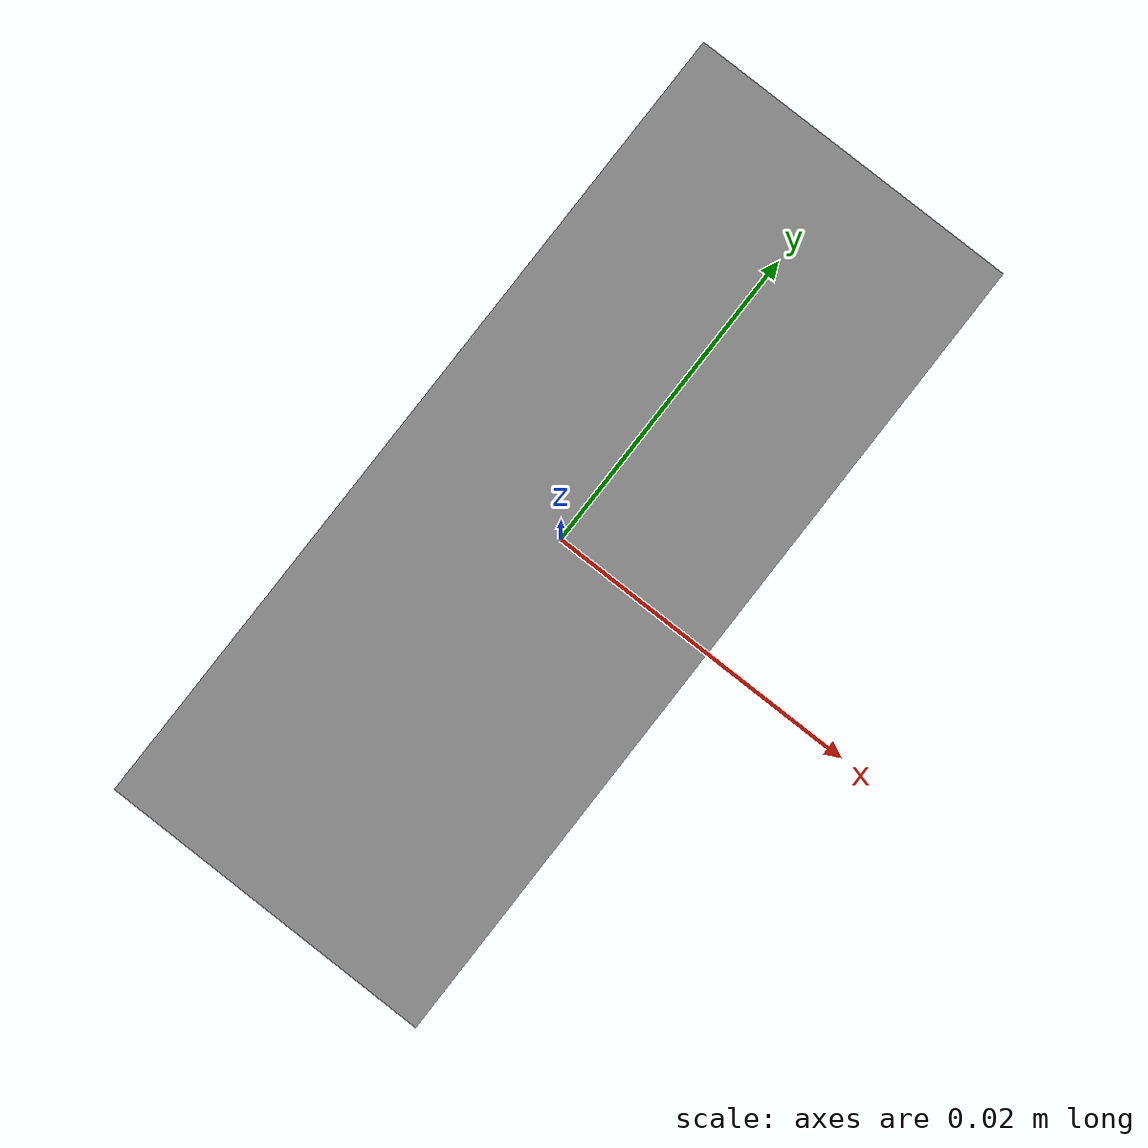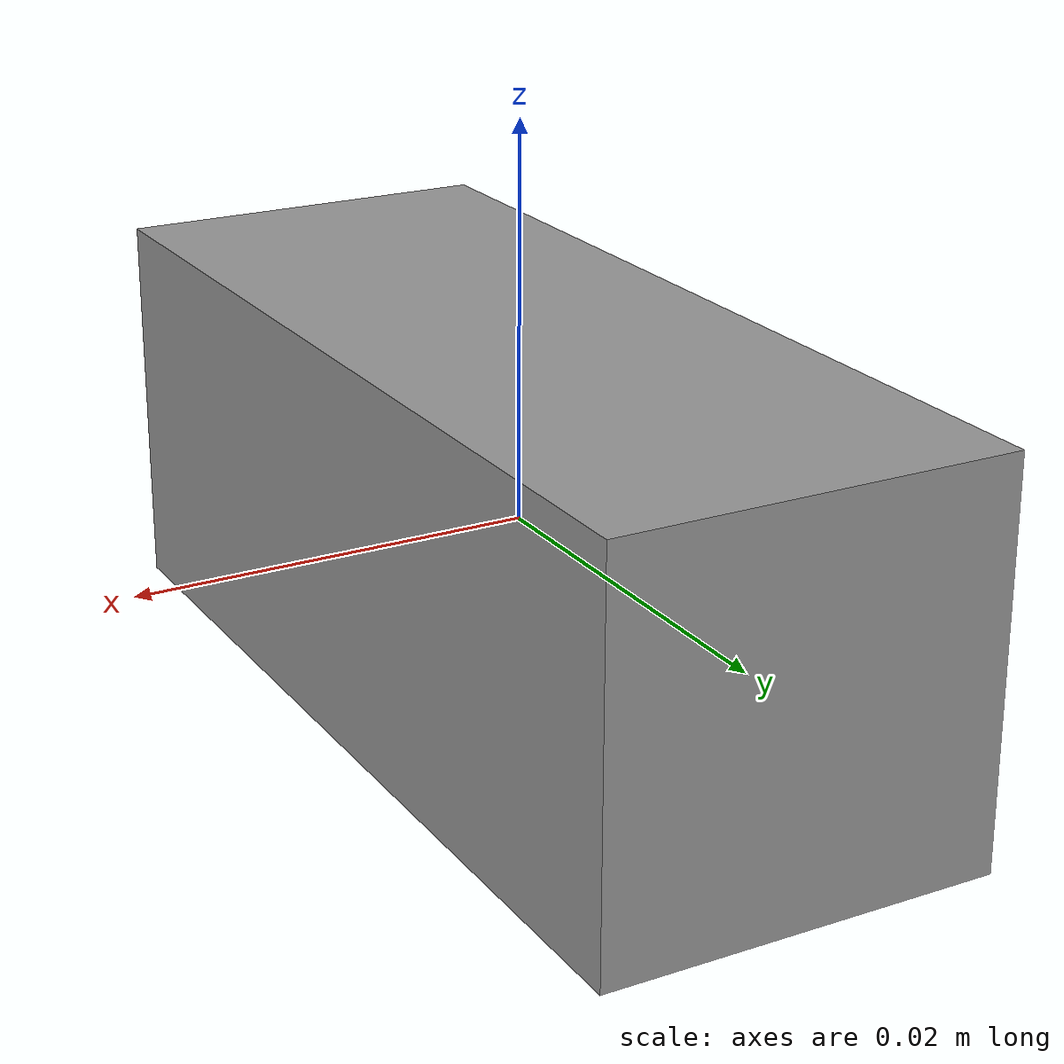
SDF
<?xml version='1.0'?>

<sdf version='1.6'>
  <model name='sonar2'>
    <link name='link_sonar2'>
      <inertial>
        <mass>0.0052875</mass>
        <inertia>
          <ixx>4.1e-07</ixx>
          <ixy>0</ixy>
          <ixz>0</ixz>
          <iyy>7.9e-07</iyy>
          <iyz>0</iyz>
          <izz>4.1e-07</izz>
        </inertia>
        <pose frame=''>0 0 0 0 -0 0</pose>
      </inertial>
      <pose frame=''>0 0 0 0 -0 0</pose>
      <gravity>1</gravity>
      <self_collide>0</self_collide>
      <kinematic>0</kinematic>
      <enable_wind>0</enable_wind>
      <visual name='visual'>
        <pose frame=''>0 0 0 0 -0 0</pose>
        <geometry>
          <box>
            <size>0.02 0.05 0.02</size>
          </box>
        </geometry>
        <material>
          <lighting>1</lighting>
          <script>
            <uri>file://media/materials/scripts/gazebo.material</uri>
            <name>Gazebo/Grey</name>
          </script>
          <shader type='vertex'>
            <normal_map>__default__</normal_map>
          </shader>
          <ambient>0.3 0.3 0.3 1</ambient>
          <diffuse>0.7 0.7 0.7 1</diffuse>
          <specular>0.01 0.01 0.01 1</specular>
          <emissive>0 0 0 1</emissive>
        </material>
        <transparency>0</transparency>
        <cast_shadows>1</cast_shadows>
      </visual>
      <collision name='collision'>
        <laser_retro>0</laser_retro>
        <max_contacts>10</max_contacts>
        <pose frame=''>0 0 0 0 -0 0</pose>
        <geometry>
          <box>
            <size>0.02 0.05 0.02</size>
          </box>
        </geometry>
        <surface>
          <friction>
            <ode>
              <mu>1</mu>
              <mu2>1</mu2>
              <fdir1>0 0 0</fdir1>
              <slip1>0</slip1>
              <slip2>0</slip2>
            </ode>
            <torsional>
              <coefficient>1</coefficient>
              <patch_radius>0</patch_radius>
              <surface_radius>0</surface_radius>
              <use_patch_radius>1</use_patch_radius>
              <ode>
                <slip>0</slip>
              </ode>
            </torsional>
          </friction>
          <bounce>
            <restitution_coefficient>0</restitution_coefficient>
            <threshold>1e+06</threshold>
          </bounce>
          <contact>
            <collide_without_contact>0</collide_without_contact>
            <collide_without_contact_bitmask>1</collide_without_contact_bitmask>
            <collide_bitmask>1</collide_bitmask>
            <ode>
              <soft_cfm>0</soft_cfm>
              <soft_erp>0.2</soft_erp>
              <kp>1e+13</kp>
              <kd>1</kd>
              <max_vel>0.01</max_vel>
              <min_depth>0</min_depth>
            </ode>
            <bullet>
              <split_impulse>1</split_impulse>
              <split_impulse_penetration_threshold>-0.01</split_impulse_penetration_threshold>
              <soft_cfm>0</soft_cfm>
              <soft_erp>0.2</soft_erp>
              <kp>1e+13</kp>
              <kd>1</kd>
            </bullet>
          </contact>
        </surface>
      </collision>
      <sensor type="ray" name="sonar">
        <pose>0.001 0 0 0 0 0</pose>
        <visualize>true</visualize>
        <update_rate>20</update_rate>
        <ray>
          <scan>
            <horizontal>
              <samples>10</samples>
              <resolution>1.0</resolution>
              <min_angle>-0.15</min_angle>
              <max_angle>0.15</max_angle>
            </horizontal>
            <vertical>
              <samples>1</samples>
              <resolution>1</resolution>
              <min_angle>0.0</min_angle> <!-- Changed from 0.15 to 0.0 -->
              <max_angle>0.0</max_angle> <!-- Changed from 0.15 to 0.0 -->
            </vertical>
          </scan>
          <range>
            <min>0.01</min>
            <max>1.00</max>
            <resolution>0.01</resolution>
          </range>
        </ray>
        <plugin filename="libgazebo_ros_range.so" name="gazebo_ros_range">
          <gaussianNoise>0.005</gaussianNoise>
          <alwaysOn>true</alwaysOn>
          <updateRate>20</updateRate>
          <topicName>/automobile/sonar2</topicName>
          <frameName>ultrasonic</frameName>
          <fov>0.3</fov>
          <radiation>ultrasound</radiation>
        </plugin>
      </sensor>
    </link>
  </model>
</sdf>
